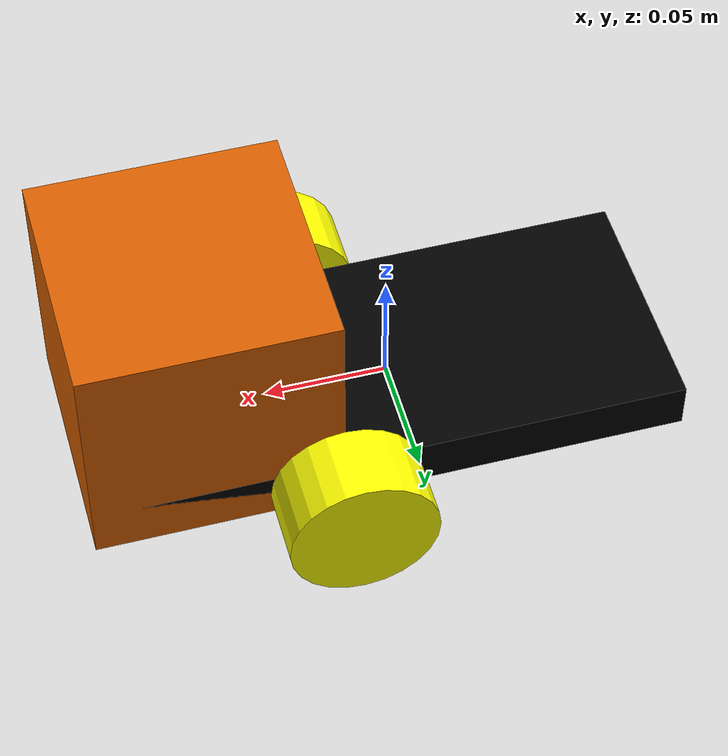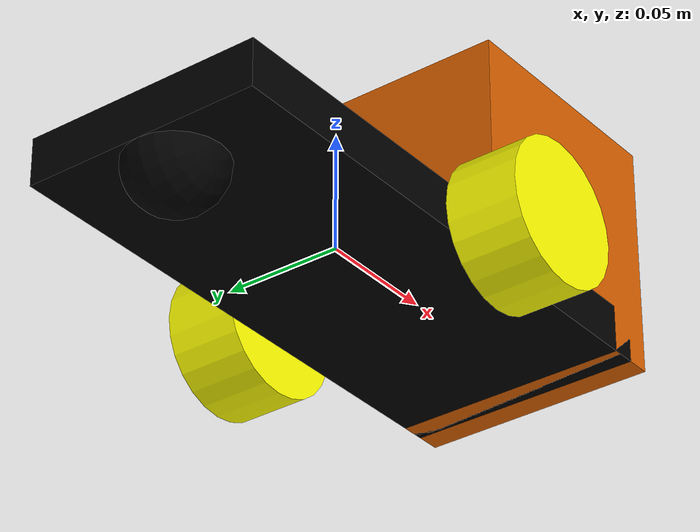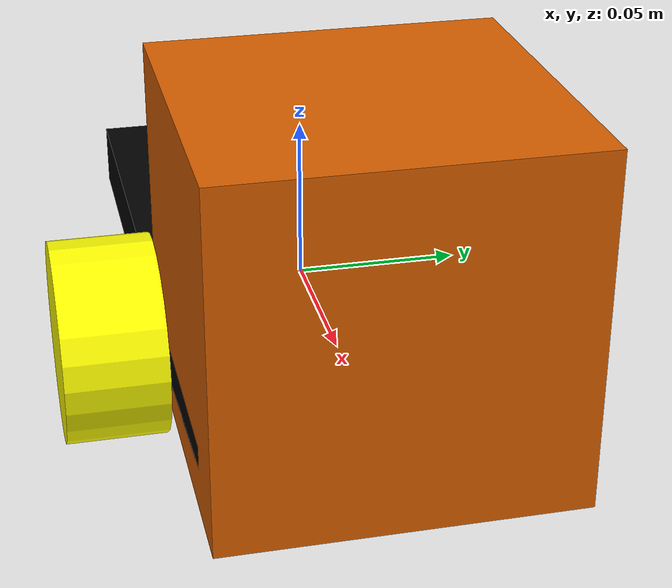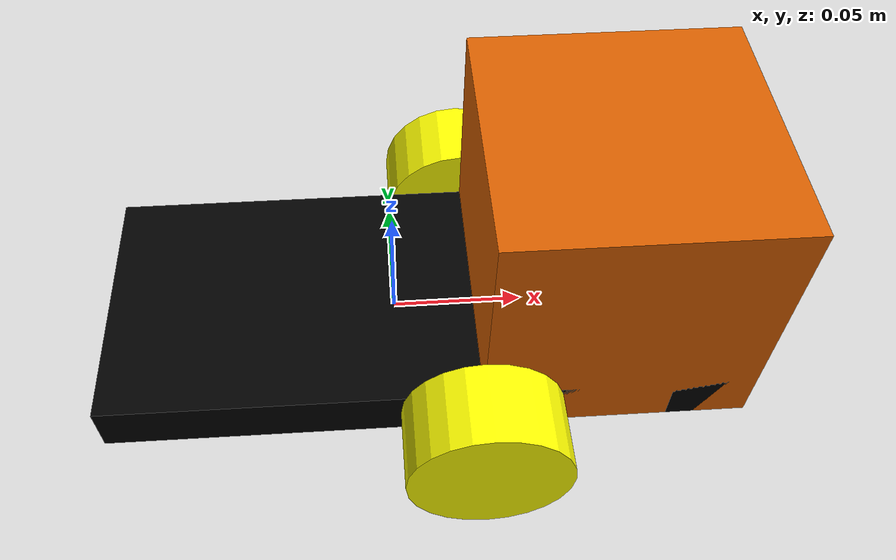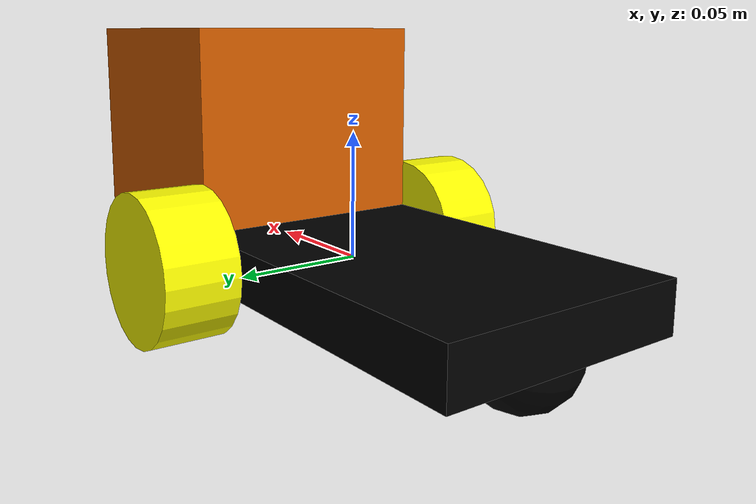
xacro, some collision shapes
<?xml version='1.0'?>

<robot name="robokoko" xmlns:xacro="http://www.ros.org/wiki/xacro">

	<xacro:include filename="$(find robokoko)/urdf/robokoko.gazebo" />

	<gazebo reference="chassis">
  	<material>Gazebo/Black</material>
	</gazebo>

	<gazebo reference="camera">
  	<material>Gazebo/Black</material>
	</gazebo>

	<gazebo reference="left_wheel">
  	<material>Gazebo/Yellow</material>
	</gazebo>

	<gazebo reference="right_wheel">
  	<material>Gazebo/Yellow</material>
	</gazebo>

	<gazebo reference="back_caster">
  	<material>Gazebo/Gray</material>
	</gazebo>

	<material name="yellow">
		<color rgba="1 1 0 1"/>
  </material>

	<material name="black">
   	<color rgba="0 0 0 1"/>
  </material>

  <link name="robot_footprint"></link>

	<!-- Chassis  -->

  <joint name="robot_footprint_joint" type="fixed">
    <origin xyz="0 0 0" rpy="0 0 0" />
    <parent link="robot_footprint"/>
    <child link="chassis" />
  </joint>

  <link name='chassis'>
    <pose>0 0 0.1 0 0 0</pose>

    <inertial>
      <mass value="0.5"/>
      <origin xyz="0.0 0 0" rpy=" 0 0 0"/>
      <inertia
          ixx="0.00043333333333333337" ixy="0" ixz="0"
          iyy="0.002033333333333333" iyz="0"
          izz="0.0024333333333333334"
      />
    </inertial>

    <collision name='collision'>
      <origin xyz="0 0 0" rpy=" 0 0 0"/>
      <geometry>
        <box size="0.22 .10 .02"/>
      </geometry>
    </collision>

    <visual name='chassis_visual'>
      <origin xyz="0 0 0" rpy=" 0 0 0"/>
      <geometry>
        <box size="0.22 .10 .02"/>
      </geometry>
			<material name="black"/>
		</visual>

  </link>

	<!-- Left Wheel  -->

	<joint name="left_wheel_hinge" type="continuous" >
		<parent link="chassis"/>
		<child link="left_wheel"/>
		<axis xyz="0 1 0" rpy="0 0 0">
		</axis>
		<origin xyz="0.03 0.065 0" rpy="0 0 0"/>
    <limit effort="10000" velocity="1000"/>
	</joint>

	<link name='left_wheel'>

		<inertial>
			<mass value="0.1"/>
			<origin xyz="0.0 0 0" rpy="0 1.5707 1.5707"/>
			<inertia
			  ixx="0.000135" ixy="0" ixz="0"
			  iyy="0.000135" iyz="0"
			  izz="9e-05"
			/>
		</inertial>

		<collision name='collision'>
			<origin xyz="0.0 0 0" rpy="0 1.5707 1.5707"/>
			<geometry>
				<cylinder radius="0.03" length="0.03"/>
			</geometry>
		</collision>

		<visual name='left_wheel_visual'>
			<origin xyz="0.0 0 0" rpy="0 1.5707 1.5707"/>
			<geometry>
				<cylinder radius="0.03" length="0.03"/>
				</geometry>
				<material name="yellow"/>
		</visual>

	</link>

	<!-- Right Wheel  -->

	<joint name="right_wheel_hinge" type="continuous" >
		<parent link="chassis"/>
		<child link="right_wheel"/>
		<axis xyz="0 1 0" rpy="0 0 0">
		</axis>
		<origin xyz="0.03 -0.065 0" rpy="0 0 0"/>
		<limit effort="10000" velocity="1000"/>
	</joint>

	<link name='right_wheel'>

		<inertial>
			<mass value="0.1"/>
			<origin xyz="0.0 0 0" rpy="0 1.5707 1.5707"/>
			<inertia
			  ixx="0.000135" ixy="0" ixz="0"
			  iyy="0.000135" iyz="0"
			  izz="9e-05"
			/>
		</inertial>

		<collision name='collision'>
			<origin xyz="0.0 0 0" rpy="0 1.5707 1.5707"/>
			<geometry>
				<cylinder radius="0.03" length="0.03"/>
			</geometry>
		</collision>

		<visual name='right_wheel_visual'>
			<origin xyz="0.0 0 0" rpy="0 1.5707 1.5707"/>
			<geometry>
				<cylinder radius="0.03" length="0.03"/>
			</geometry>
			<material name="yellow"/>
		</visual>

	</link>

	<!-- Back_caster  -->

	<joint name="back_caster_joint" type="fixed" >
		<parent link="chassis"/>
		<child link="back_caster"/>
		<axis xyz="0 1 0" rpy="0 0 0">
		</axis>
    <origin xyz="-0.09 0 -0.01" rpy=" 0 0 0"/>
		<limit effort="10000" velocity="1000"/>
	</joint>

	<link name='back_caster'>

		<inertial>
			<mass value="0.3"/>
			<origin xyz="0.0 0 0" rpy="0 1.5707 1.5707"/>
			<inertia
			  ixx="4.8e-05" ixy="0" ixz="0"
			  iyy="4.8e-05" iyz="0"
			  izz="4.8e-05"/>
		</inertial>

		<collision name='back_caster_collision'>
			<origin xyz="0.0 0 0" rpy="0 1.5707 1.5707"/>
			<geometry>
				<sphere radius="0.02"/>
			</geometry>
		</collision>

		<visual name='back_caster_visual'>
			<origin xyz="0.0 0 0" rpy="0 1.5707 1.5707"/>
			<geometry>
				<sphere radius="0.02"/>
			</geometry>
			<material name="black"/>
		</visual>

	</link>

	<!-- Lidar -->

	<joint name="hokuyo_joint" type="fixed" >
		<parent link="chassis"/>
		<child link="hokuyo"/>
		<origin xyz="0.08 0 0.04" rpy="0 0 0"/>
	</joint>

	<link name='hokuyo'>

		<inertial>
			<mass value="0.1"/>
			<origin xyz="0.0 0 0" rpy="0 0 0"/>
			<inertia
			  ixx="1e-6" ixy="0" ixz="0"
			  iyy="1e-6" iyz="0"
			  izz="1e-6"
			/>
		</inertial>

		<collision name='collision'>
			<origin xyz="0.0 0 0" rpy="0 0 0"/>
			<geometry>
				<box size="0.1 0.1 0.1"/>
			</geometry>
		</collision>

		<visual name='camera_visual'>
			<origin xyz="0.0 0 0" rpy="0 0 0"/>
			<geometry>
				<mesh filename="package://robokoko/meshes/hokuyo.dae"/>
			</geometry>
		</visual>

	</link>

	<!-- Camera -->

	<joint name="camera_joint" type="fixed" >
		<parent link="chassis"/>
		<child link="camera"/>
		<origin xyz="0.11 0 0" rpy="0 0 0"/>
	</joint>

	<link name='camera'>

		<inertial>
			<mass value="0.1"/>
			<origin xyz="0.0 0 0" rpy="0 0 0"/>
			<inertia
			  ixx="1e-6" ixy="0" ixz="0"
			  iyy="1e-6" iyz="0"
			  izz="1e-6"
			/>
		</inertial>

		<collision name='collision'>
			<origin xyz="0.0 0 0" rpy="0 0 0"/>
			<geometry>
				<box size="0.02 0.1 0.02"/>
			</geometry>
		</collision>

		<visual name='camera_visual'>
			<origin xyz="0.0 0 0" rpy="0 0 0"/>
			<geometry>
				<box size="0.02 0.1 0.02"/>
			</geometry>
			<material name="black"/>
		</visual>

	</link>

</robot>
